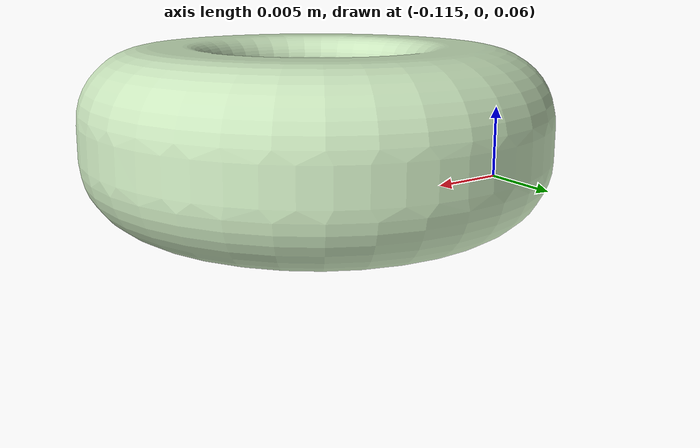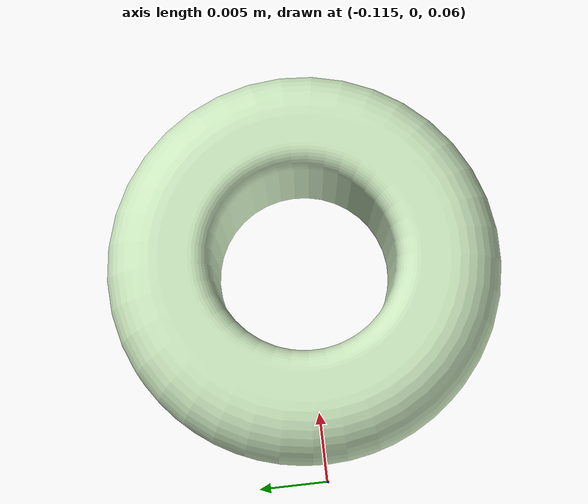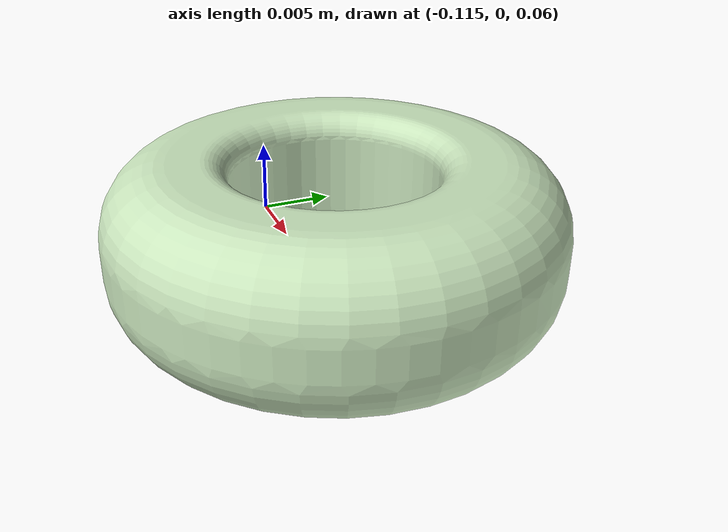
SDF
<?xml version="1.0" ?>
<sdf version="1.6">
    <model name="disk6">
        <link name="disk6">
            <frame name="disk6_frame">
                <pose>0 0 0 0 -0 0</pose>
            </frame>
            <visual name="disk6_0_disk6_visual">
                <pose>0 0 0 0 -0 0</pose>
                <geometry>
                    <mesh>
                        <uri>file://home/leo/workspace/ur_gz/src/Universal_Robots_ROS2_Ignition_Simulation/ur_simulation_gz/sdf/models/disk6/disk6.dae</uri>
                    </mesh>
                </geometry>
                <material>
                    <ambient>0.79607843137254896693 0.90588235294117647189 0.74509803921568629193 1</ambient>
                    <diffuse>0.79607843137254896693 0.90588235294117647189 0.74509803921568629193 1</diffuse>
                    <specular>0.1 0.1 0.1 1</specular>
                    <emissive>0 0 0 0</emissive>
                </material>
            </visual>
            <collision name="disk6_0_disk6_visual">
                <pose>0 0 0 0 -0 0</pose>
                <geometry>
                    <mesh>
                        <uri>file://home/leo/workspace/ur_gz/src/Universal_Robots_ROS2_Ignition_Simulation/ur_simulation_gz/sdf/models/disk6/disk6.stl</uri>
                    </mesh>
                </geometry>
            </collision>
            <inertial>
                <pose>-3.4007953628298417835e-17 -0.032500000000000028866 0.048499999999999994504 0 0 0</pose>
                <mass>0.01111778</mass>
                <inertia>
                    <ixx>6.761e-7</ixx><ixy>0</ixy><ixz>0</ixz>
                    <iyy>6.761e-7</iyy><iyz>0</iyz>
                    <izz>1.197e-6</izz>
                </inertia>
            </inertial>
        </link>
    </model>
</sdf>
